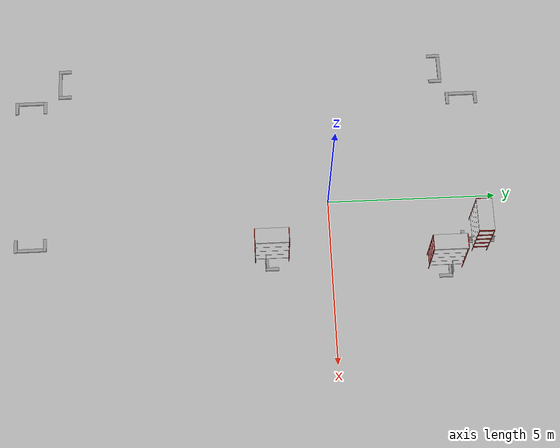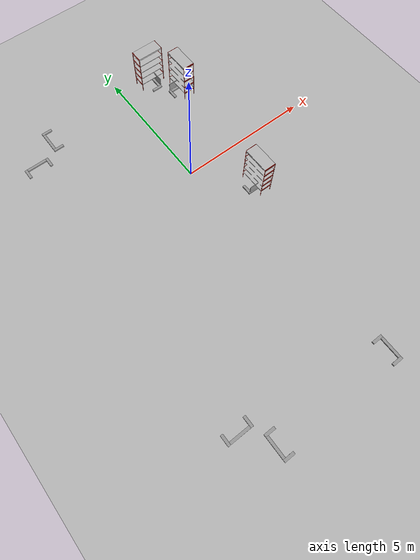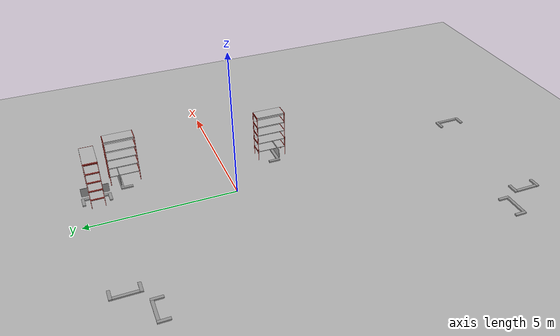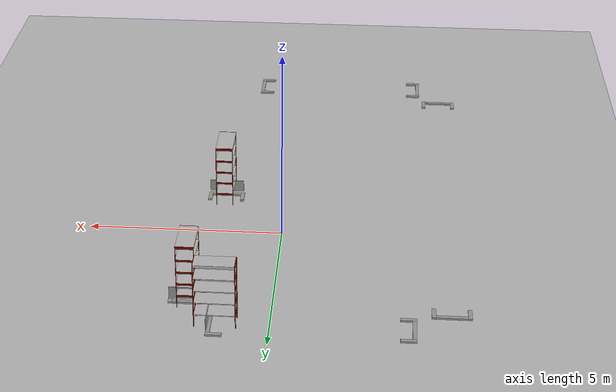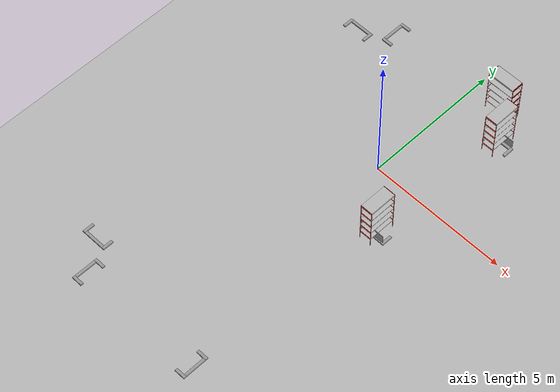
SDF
<sdf version="1.6">
 <world name="default">
  <light name="light0" type="directional">
   <pose>0 -18.818 8 0.75 -0 0</pose>
   <diffuse>0.5 0.5 0.5 1</diffuse>
   <specular>0.1 0.1 0.1 1</specular>
   <direction>0.1 0.1 -0.9</direction>
   <attenuation>
    <range>20</range>
    <constant>0.5</constant>
    <linear>0.01</linear>
    <quadratic>0.001</quadratic>
   </attenuation>
   <cast_shadows>0</cast_shadows>
  </light>
  <light name="light3" type="directional">
   <pose>3.9239 1.64974 4 0 1.2 0</pose>
   <diffuse>0.5 0.5 0.5 1</diffuse>
   <specular>0.1 0.1 0.1 1</specular>
   <direction>0.1 0.1 -0.9</direction>
   <attenuation>
    <range>20</range>
    <constant>0.5</constant>
    <linear>0.01</linear>
    <quadratic>0.001</quadratic>
   </attenuation>
   <cast_shadows>0</cast_shadows>
  </light>
  <light name="light5" type="directional">
   <pose>0.454419 12.4783 5 -0.8 0 0</pose>
   <diffuse>0.5 0.5 0.5 1</diffuse>
   <specular>0.1 0.1 0.1 1</specular>
   <direction>0.1 0.1 -0.9</direction>
   <attenuation>
    <range>20</range>
    <constant>0.5</constant>
    <linear>0.01</linear>
    <quadratic>0.001</quadratic>
   </attenuation>
   <cast_shadows>0</cast_shadows>
  </light>
  <scene>
   <shadows>false</shadows>
   <ambient>0.5 0.5 0.5 1.0</ambient>
   <grid>false</grid>
   <sky><time>22</time><sunrise>20</sunrise><sunset>21</sunset><clouds><humidity>0</humidity></clouds></sky>
  </scene>
  <include><uri>model://ground_plane</uri></include>
  <include><uri>model://moon_surface</uri><pose>0 0 -0.25 0 0 0</pose></include>
  <include><uri>model://rack_base</uri><name>rack_base</name><pose>1.421 4.35 0.05 0 -0 -1.57</pose></include>
  <include><uri>model://rack</uri><name>rack1</name><pose>1.26 4.35 0.1 0 -0 3.14</pose></include>
  <include><uri>model://rack</uri><name>rack2</name><pose>2.03 3.30 0.1 0 -0 -1.57</pose></include>
  <include><uri>model://rack</uri><name>rack3</name><pose>1.61065 -1.750503 0.0750 0 0 1.57</pose></include>
  <plugin name="gazebo_link_attacher" filename="libgazebo_link_attacher.so"/>
  <plugin name="gazebo_link_ur5_attacher" filename="libgazebo_link_ur5_attacher.so"/>
 </world>
</sdf>
